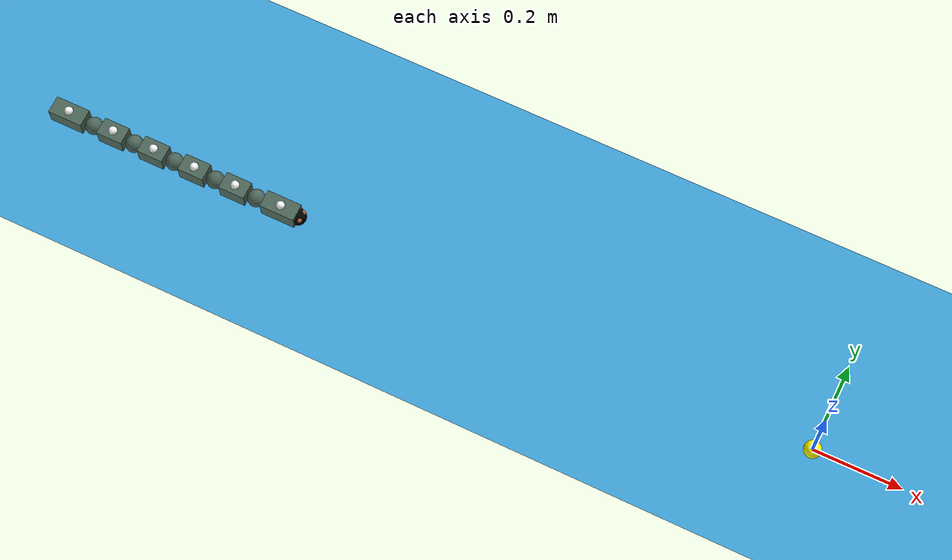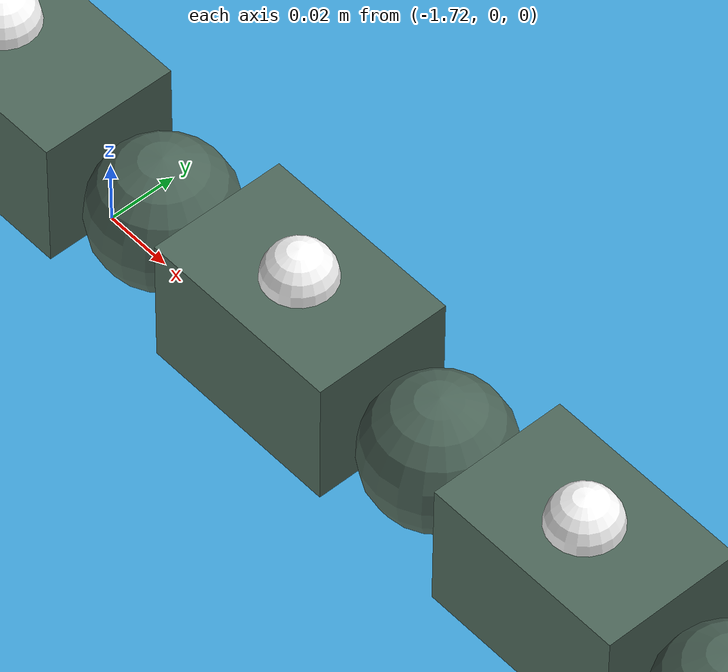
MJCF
<mujoco model="snake3">
	<compiler inertiafromgeom="true" angle="radian"/>
	<default>
		<joint limited="true" range="-1.5 1.5"/>
		<motor ctrllimited="true" ctrlrange="-5 5"/>
		<default class="body">
			<geom contype="1" conaffinity="1" material="matbody"/>
		</default>
	</default>
	<option timestep="0.01"  integrator="RK4"/>

	<asset>
		<texture type="skybox" builtin="gradient" rgb1="0.3 0.5 0.7" rgb2=".1 .15 .2" width="512" height="512"/>
		<texture name="texplane" type="2d" builtin="checker" rgb1=".2 .3 .4" rgb2=".1 .15 .2" width="512" height="512" mark="cross" markrgb=".8 .8 .8" />
		<material name="matplane" reflectance="0.3" texture="texplane" texrepeat="1 1" texuniform="true" />
		<material name="matbody" specular="3" shininess=".5" reflectance="1" rgba=".3 .4 .35 1" />
	</asset>

	<sensor>
		<velocimeter name="head_velocity" site="head"/>
		<velocimeter name="velocity1" site="bsensor1"/>
		<velocimeter name="velocity2" site="bsensor2"/>
		<velocimeter name="velocity3" site="bsensor3"/>
		<velocimeter name="velocity4" site="bsensor4"/>
		<velocimeter name="velocity5" site="bsensor5"/>
		<velocimeter name="velocity6" site="bsensor6"/>

	</sensor>

	<worldbody>
		<light directional="true" cutoff="100" exponent="1" diffuse="1 1 1" specular=".1 .1 .1" pos="0 0 1.3" dir="-0 0 -1.3"/>
		<geom name="ground" material="matplane" type="plane" pos="0 0 0" size="30 30 1" contype="0" conaffinity="0" rgba="0.25 0.64 0.85 .2" condim="6"  />
		<geom name="target_marker" type="sphere" size="0.02"  rgba="1 1 0 1" pos="0.0 0.0 0" contype="0" conaffinity="0"/>

		<body name="sn1" pos="-1.2 0.0 0.02" childclass="body">
			<site name="eyeL" type="sphere" size="0.005" pos=".01 -.01 .01" rgba=".9 .4 .2 1"/>
			<site name="eyeR" type="sphere" size="0.005" pos=".01 0.01 .01" rgba=".9 .4 .2 1"/>
			<site name="head" material="matplane" type="sphere" size="0.02" pos="0 0 0" rgba="0 0 0 1"/>
			<site name="bsensor1" material="matplane" type="sphere" size="0.01" pos="-0.04 0 0.02" rgba="1 1 1 1"/>

			<inertial pos="-0.04 0 0" quat="0.707 0 -0.707 0" mass="0.1" diaginertia="0.016 0.0016 0.0001"/>
			<joint name="h1" type="slide" pos="0 0 0.02" axis="1 0 0" limited="false"/>
			<joint name="h2" type="slide" pos="0 0 0.02" axis="0 1 0" limited="false"/>
			<joint name="h3" type="hinge" pos="0 0 0.02" axis="0 0 1" limited="false"/>
			<geom name="snake1" type="box" pos="-0.04 0 0" quat="0.707 0 -0.707 0" size="0.02 0.02 0.04" />

			<body name="x1" pos ="-0.1 0 0">
				<joint name="j1" type="hinge" pos="0 0 0" axis="0 0 1"/>
				<geom type="sphere" size="0.02"/>

				<body name="sn2" pos="-0.02 0 0">
					<inertial pos="-0.03 0 0" quat="0.707 0 -0.707 0" mass="0.1" diaginertia="0.0016 0.0016 0.0001"/>
					<geom name="snake2" type="box" pos="-0.03 0 0" quat="0.707 0 -0.707 0" size="0.02 0.02 0.03" />
					<site name="bsensor2" material="matplane" type="sphere" size="0.01" pos="-0.03 0 0.02" rgba="1 1 1 1"/>

					<body name="x2" pos ="-0.08 0 0">
						<joint name="j2" type="hinge" pos="0 0 0" axis="0 0 1"/>
						<geom type="sphere" size="0.02"/>

						<body name="sn3" pos="-0.02 0 0">
							<inertial pos="-0.03 0 0" quat="0.707 0 -0.707 0" mass="0.1" diaginertia="0.0016 0.0016 0.0001"/>
							<geom name="snake3" type="box" pos="-0.03 0 0" quat="0.707 0 -0.707 0" size="0.02 0.02 0.03" />
							<site name="bsensor3" material="matplane" type="sphere" size="0.01" pos="-0.03 0 0.02" rgba="1 1 1 1"/>

							<body name="x3" pos ="-0.08 0 0">
								<joint name="j3" type="hinge" pos="0 0 0" axis="0 0 1"/>
								<geom type="sphere" size="0.02"/>

								<body name="sn4" pos="-0.02 0 0">
									<inertial pos="-0.03 0 0" quat="0.707 0 -0.707 0" mass="0.1" diaginertia="0.0016 0.0016 0.0001"/>
									<geom name="snake4" type="box" pos="-0.03 0 0" quat="0.707 0 -0.707 0" size="0.02 0.02 0.03" />
									<site name="bsensor4" material="matplane" type="sphere" size="0.01" pos="-0.03 0 0.02" rgba="1 1 1 1"/>

									<body name="x4" pos ="-0.08 0 0">
										<joint name="j4" type="hinge" pos="0 0 0" axis="0 0 1"/>
										<geom type="sphere" size="0.02"/>

										<body name="sn5" pos="-0.02 0 0">
											<inertial pos="-0.03 0 0" quat="0.707 0 -0.707 0" mass="0.1" diaginertia="0.0016 0.0016 0.0001"/>
											<geom name="snake5" type="box" pos="-0.03 0 0" quat="0.707 0 -0.707 0" size="0.02 0.02 0.03" />
											<site name="bsensor5" material="matplane" type="sphere" size="0.01" pos="-0.03 0 0.02" rgba="1 1 1 1"/>

											<body name="x5" pos ="-0.08 0 0">
												<joint name="j5" type="hinge" pos="0 0 0" axis="0 0 1" range="-0.5 0.5"/>
												<geom type="sphere" size="0.02"/>

												<body name="sn6" pos="-0.02 0 0">
													<inertial pos="-0.04 0 0" quat="0.707 0 -0.707 0" mass="0.1" diaginertia="0.0016 0.0016 0.0001"/>
													<geom name="snake6" type="box" pos="-0.04 0 0" quat="0.707 0 -0.707 0" size="0.02 0.02 0.04" />
													<site name="bsensor6" material="matplane" type="sphere" size="0.01" pos="-0.04 0 0.02" rgba="1 1 1 1"/>

												</body>
											</body>
										</body>
									</body>
								</body>
							</body>
						</body>
					</body>
				</body>
			</body>
		</body>

	</worldbody>

	<actuator>
		<motor joint="j1" gear="5"/>
		<motor joint="j2" gear="5"/>
		<motor joint="j3" gear="5"/>
		<motor joint="j4" gear="5"/>
		<motor joint="j5" gear="5"/>
	</actuator>

	<contact>
		<pair geom1="ground" geom2="snake1" condim="3" friction="5.0 5.0" />
		<pair geom1="ground" geom2="snake2" condim="3" friction="5.0 5.0" />
		<pair geom1="ground" geom2="snake3" condim="3" friction="5.0 5.0" />
		<pair geom1="ground" geom2="snake4" condim="3" friction="5.0 5.0" />
		<pair geom1="ground" geom2="snake5" condim="3" friction="5.0 5.0" />
		<pair geom1="ground" geom2="snake6" condim="3" friction="5.0 5.0" />
	</contact>

</mujoco>
